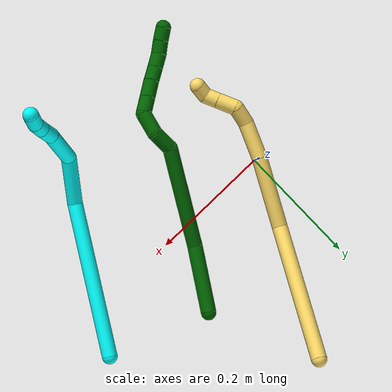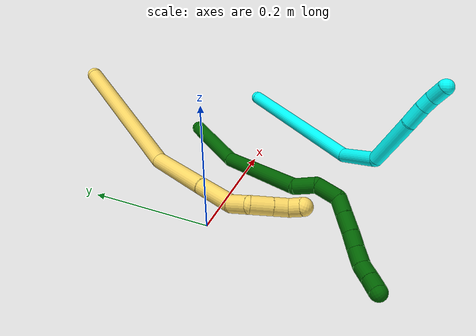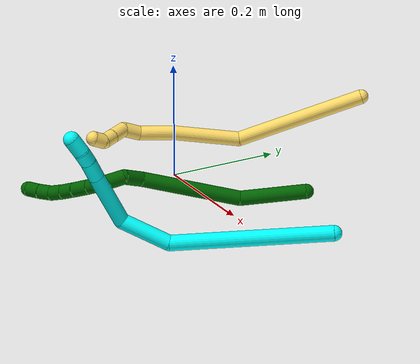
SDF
<sdf version="1.7">
 <world name="default">
  <model name="3">
   <static>0</static>
   <link name="3">
    <collision name="collision-cylinder-e_1_1_4">
     <pose>-0.059595 -0.046263 -0.102032 2.7159 -0.488881 -1.71365</pose>
     <geometry><cylinder><radius>0.0125</radius><length>0.253789</length></cylinder></geometry>
     <surface>
      <friction><ode><mu>1.16</mu><mu2>1.16</mu2><slip1>0</slip1><slip2>0</slip2></ode></friction>
      <contact><ode><kp>1e+06</kp><kd>1</kd><max_vel>0</max_vel><min_depth>0.001</min_depth></ode></contact>
     </surface>
    </collision>
    <visual name="visual-cylinder-e_1_1_4">
     <pose>-0.059595 -0.046263 -0.102032 2.7159 -0.488881 -1.71365</pose>
     <geometry><cylinder><radius>0.0125</radius><length>0.253789</length></cylinder></geometry>
     <material><ambient>0.003922 1 0.996078 1</ambient></material>
    </visual>
    <collision name="collision-cylinder-e_2_4_5">
     <pose>-0.122996 -0.120224 -0.233208 2.38162 -0.094412 -0.235467</pose>
     <geometry><cylinder><radius>0.0125</radius><length>0.080774</length></cylinder></geometry>
     <surface>
      <friction><ode><mu>1.16</mu><mu2>1.16</mu2><slip1>0</slip1><slip2>0</slip2></ode></friction>
      <contact><ode><kp>1e+06</kp><kd>1</kd><max_vel>0</max_vel><min_depth>0.001</min_depth></ode></contact>
     </surface>
    </collision>
    <visual name="visual-cylinder-e_2_4_5">
     <pose>-0.122996 -0.120224 -0.233208 2.38162 -0.094412 -0.235467</pose>
     <geometry><cylinder><radius>0.0125</radius><length>0.080774</length></cylinder></geometry>
     <material><ambient>0.003922 1 0.996078 1</ambient></material>
    </visual>
    <collision name="collision-cylinder-e_3_5_6">
     <pose>-0.099614 -0.173279 -0.285434 2.30929 0.670443 1.33504</pose>
     <geometry><cylinder><radius>0.0125</radius><length>0.08752</length></cylinder></geometry>
     <surface>
      <friction><ode><mu>1.16</mu><mu2>1.16</mu2><slip1>0</slip1><slip2>0</slip2></ode></friction>
      <contact><ode><kp>1e+06</kp><kd>1</kd><max_vel>0</max_vel><min_depth>0.001</min_depth></ode></contact>
     </surface>
    </collision>
    <visual name="visual-cylinder-e_3_5_6">
     <pose>-0.099614 -0.173279 -0.285434 2.30929 0.670443 1.33504</pose>
     <geometry><cylinder><radius>0.0125</radius><length>0.08752</length></cylinder></geometry>
     <material><ambient>0.003922 1 0.996078 1</ambient></material>
    </visual>
    <collision name="collision-cylinder-e_4_6_7">
     <pose>-0.061054 -0.205956 -0.317402 2.45244 0.779131 1.70486</pose>
     <geometry><cylinder><radius>0.0125</radius><length>0.032365</length></cylinder></geometry>
     <surface>
      <friction><ode><mu>1.16</mu><mu2>1.16</mu2><slip1>0</slip1><slip2>0</slip2></ode></friction>
      <contact><ode><kp>1e+06</kp><kd>1</kd><max_vel>0</max_vel><min_depth>0.001</min_depth></ode></contact>
     </surface>
    </collision>
    <visual name="visual-cylinder-e_4_6_7">
     <pose>-0.061054 -0.205956 -0.317402 2.45244 0.779131 1.70486</pose>
     <geometry><cylinder><radius>0.0125</radius><length>0.032365</length></cylinder></geometry>
     <material><ambient>0.003922 1 0.996078 1</ambient></material>
    </visual>
    <collision name="collision-cylinder-e_5_7_8">
     <pose>-0.043143 -0.217852 -0.332496 2.50649 0.703371 1.68071</pose>
     <geometry><cylinder><radius>0.0125</radius><length>0.020223</length></cylinder></geometry>
     <surface>
      <friction><ode><mu>1.16</mu><mu2>1.16</mu2><slip1>0</slip1><slip2>0</slip2></ode></friction>
      <contact><ode><kp>1e+06</kp><kd>1</kd><max_vel>0</max_vel><min_depth>0.001</min_depth></ode></contact>
     </surface>
    </collision>
    <visual name="visual-cylinder-e_5_7_8">
     <pose>-0.043143 -0.217852 -0.332496 2.50649 0.703371 1.68071</pose>
     <geometry><cylinder><radius>0.0125</radius><length>0.020223</length></cylinder></geometry>
     <material><ambient>0.003922 1 0.996078 1</ambient></material>
    </visual>
    <collision name="collision-cylinder-e_6_8_2">
     <pose>-0.030481 -0.230678 -0.346109 2.30222 0.504585 1.04778</pose>
     <geometry><cylinder><radius>0.0125</radius><length>0.02533</length></cylinder></geometry>
     <surface>
      <friction><ode><mu>1.16</mu><mu2>1.16</mu2><slip1>0</slip1><slip2>0</slip2></ode></friction>
      <contact><ode><kp>1e+06</kp><kd>1</kd><max_vel>0</max_vel><min_depth>0.001</min_depth></ode></contact>
     </surface>
    </collision>
    <visual name="visual-cylinder-e_6_8_2">
     <pose>-0.030481 -0.230678 -0.346109 2.30222 0.504585 1.04778</pose>
     <geometry><cylinder><radius>0.0125</radius><length>0.02533</length></cylinder></geometry>
     <material><ambient>0.003922 1 0.996078 1</ambient></material>
    </visual>
    <collision name="collision-sphere-2">
     <pose>-0.024358 -0.238929 -0.353514 0 -0 0</pose>
     <geometry><sphere><radius>0.0125</radius></sphere></geometry>
     <surface>
      <friction><ode><mu>1.16</mu><mu2>1.16</mu2><slip1>0</slip1><slip2>0</slip2></ode></friction>
      <contact><ode><kp>1e+06</kp><kd>1</kd><max_vel>0</max_vel><min_depth>0.001</min_depth></ode></contact>
     </surface>
    </collision>
    <visual name="visual-sphere-2">
     <pose>-0.024358 -0.238929 -0.353514 0 -0 0</pose>
     <geometry><sphere><radius>0.0125</radius></sphere></geometry>
     <material><ambient>0.003922 1 0.996078 1</ambient></material>
    </visual>
    <collision name="collision-sphere-4">
     <pose>-0.119189 -0.092525 -0.204063 0 -0 0</pose>
     <geometry><sphere><radius>0.0125</radius></sphere></geometry>
     <surface>
      <friction><ode><mu>1.16</mu><mu2>1.16</mu2><slip1>0</slip1><slip2>0</slip2></ode></friction>
      <contact><ode><kp>1e+06</kp><kd>1</kd><max_vel>0</max_vel><min_depth>0.001</min_depth></ode></contact>
     </surface>
    </collision>
    <visual name="visual-sphere-4">
     <pose>-0.119189 -0.092525 -0.204063 0 -0 0</pose>
     <geometry><sphere><radius>0.0125</radius></sphere></geometry>
     <material><ambient>0.003922 1 0.996078 1</ambient></material>
    </visual>
    <collision name="collision-sphere-1">
     <geometry><sphere><radius>0.0125</radius></sphere></geometry>
     <surface>
      <friction><ode><mu>1.16</mu><mu2>1.16</mu2><slip1>0</slip1><slip2>0</slip2></ode></friction>
      <contact><ode><kp>1e+06</kp><kd>1</kd><max_vel>0</max_vel><min_depth>0.001</min_depth></ode></contact>
     </surface>
    </collision>
    <visual name="visual-sphere-1">
     <geometry><sphere><radius>0.0125</radius></sphere></geometry>
     <material><ambient>0.003922 1 0.996078 1</ambient></material>
    </visual>
    <collision name="collision-sphere-8">
     <pose>-0.036604 -0.222427 -0.338704 0 -0 0</pose>
     <geometry><sphere><radius>0.0125</radius></sphere></geometry>
     <surface>
      <friction><ode><mu>1.16</mu><mu2>1.16</mu2><slip1>0</slip1><slip2>0</slip2></ode></friction>
      <contact><ode><kp>1e+06</kp><kd>1</kd><max_vel>0</max_vel><min_depth>0.001</min_depth></ode></contact>
     </surface>
    </collision>
    <visual name="visual-sphere-8">
     <pose>-0.036604 -0.222427 -0.338704 0 -0 0</pose>
     <geometry><sphere><radius>0.0125</radius></sphere></geometry>
     <material><ambient>0.003922 1 0.996078 1</ambient></material>
    </visual>
    <collision name="collision-sphere-5">
     <pose>-0.126804 -0.147923 -0.262352 0 -0 0</pose>
     <geometry><sphere><radius>0.0125</radius></sphere></geometry>
     <surface>
      <friction><ode><mu>1.16</mu><mu2>1.16</mu2><slip1>0</slip1><slip2>0</slip2></ode></friction>
      <contact><ode><kp>1e+06</kp><kd>1</kd><max_vel>0</max_vel><min_depth>0.001</min_depth></ode></contact>
     </surface>
    </collision>
    <visual name="visual-sphere-5">
     <pose>-0.126804 -0.147923 -0.262352 0 -0 0</pose>
     <geometry><sphere><radius>0.0125</radius></sphere></geometry>
     <material><ambient>0.003922 1 0.996078 1</ambient></material>
    </visual>
    <collision name="collision-sphere-6">
     <pose>-0.072425 -0.198634 -0.308515 0 -0 0</pose>
     <geometry><sphere><radius>0.0125</radius></sphere></geometry>
     <surface>
      <friction><ode><mu>1.16</mu><mu2>1.16</mu2><slip1>0</slip1><slip2>0</slip2></ode></friction>
      <contact><ode><kp>1e+06</kp><kd>1</kd><max_vel>0</max_vel><min_depth>0.001</min_depth></ode></contact>
     </surface>
    </collision>
    <visual name="visual-sphere-6">
     <pose>-0.072425 -0.198634 -0.308515 0 -0 0</pose>
     <geometry><sphere><radius>0.0125</radius></sphere></geometry>
     <material><ambient>0.003922 1 0.996078 1</ambient></material>
    </visual>
    <collision name="collision-sphere-7">
     <pose>-0.049683 -0.213277 -0.326288 0 -0 0</pose>
     <geometry><sphere><radius>0.0125</radius></sphere></geometry>
     <surface>
      <friction><ode><mu>1.16</mu><mu2>1.16</mu2><slip1>0</slip1><slip2>0</slip2></ode></friction>
      <contact><ode><kp>1e+06</kp><kd>1</kd><max_vel>0</max_vel><min_depth>0.001</min_depth></ode></contact>
     </surface>
    </collision>
    <visual name="visual-sphere-7">
     <pose>-0.049683 -0.213277 -0.326288 0 -0 0</pose>
     <geometry><sphere><radius>0.0125</radius></sphere></geometry>
     <material><ambient>0.003922 1 0.996078 1</ambient></material>
    </visual>
    <inertial>
     <pose>-0.074796 -0.107063 -0.190952 0 -0 0</pose>
     <mass>0.5</mass>
     <inertia>
      <ixx>-0.001276</ixx>
      <ixy>0</ixy>
      <ixz>0</ixz>
      <iyy>-0.000749</iyy>
      <iyz>0</iyz>
      <izz>0.00115</izz>
     </inertia>
    </inertial>
   </link>
   <pose>0.387648 0.066266 0.030201 -1.7676 -0.937166 0.232244</pose>
  </model>
  <model name="5">
   <static>0</static>
   <link name="5">
    <collision name="collision-cylinder-e_1_1_4">
     <pose>-0.004707 -0.105928 -0.034224 1.88329 -0.04226 -0.058057</pose>
     <geometry><cylinder><radius>0.0125</radius><length>0.222839</length></cylinder></geometry>
     <surface>
      <friction><ode><mu>1.16</mu><mu2>1.16</mu2><slip1>0</slip1><slip2>0</slip2></ode></friction>
      <contact><ode><kp>1e+06</kp><kd>1</kd><max_vel>0</max_vel><min_depth>0.001</min_depth></ode></contact>
     </surface>
    </collision>
    <visual name="visual-cylinder-e_1_1_4">
     <pose>-0.004707 -0.105928 -0.034224 1.88329 -0.04226 -0.058057</pose>
     <geometry><cylinder><radius>0.0125</radius><length>0.222839</length></cylinder></geometry>
     <material><ambient>1 0.858824 0.4 1</ambient></material>
    </visual>
    <collision name="collision-cylinder-e_2_4_5">
     <pose>-0.02415 -0.26706 -0.062602 1.4653 -0.259465 -0.23369</pose>
     <geometry><cylinder><radius>0.0125</radius><length>0.114869</length></cylinder></geometry>
     <surface>
      <friction><ode><mu>1.16</mu><mu2>1.16</mu2><slip1>0</slip1><slip2>0</slip2></ode></friction>
      <contact><ode><kp>1e+06</kp><kd>1</kd><max_vel>0</max_vel><min_depth>0.001</min_depth></ode></contact>
     </surface>
    </collision>
    <visual name="visual-cylinder-e_2_4_5">
     <pose>-0.02415 -0.26706 -0.062602 1.4653 -0.259465 -0.23369</pose>
     <geometry><cylinder><radius>0.0125</radius><length>0.114869</length></cylinder></geometry>
     <material><ambient>1 0.858824 0.4 1</ambient></material>
    </visual>
    <collision name="collision-cylinder-e_3_5_6">
     <pose>-0.043266 -0.351424 -0.054628 1.49792 -0.148707 -0.138281</pose>
     <geometry><cylinder><radius>0.0125</radius><length>0.059128</length></cylinder></geometry>
     <surface>
      <friction><ode><mu>1.16</mu><mu2>1.16</mu2><slip1>0</slip1><slip2>0</slip2></ode></friction>
      <contact><ode><kp>1e+06</kp><kd>1</kd><max_vel>0</max_vel><min_depth>0.001</min_depth></ode></contact>
     </surface>
    </collision>
    <visual name="visual-cylinder-e_3_5_6">
     <pose>-0.043266 -0.351424 -0.054628 1.49792 -0.148707 -0.138281</pose>
     <geometry><cylinder><radius>0.0125</radius><length>0.059128</length></cylinder></geometry>
     <material><ambient>1 0.858824 0.4 1</ambient></material>
    </visual>
    <collision name="collision-cylinder-e_4_6_7">
     <pose>-0.049301 -0.393981 -0.045893 1.11268 -0.110317 -0.068645</pose>
     <geometry><cylinder><radius>0.0125</radius><length>0.030057</length></cylinder></geometry>
     <surface>
      <friction><ode><mu>1.16</mu><mu2>1.16</mu2><slip1>0</slip1><slip2>0</slip2></ode></friction>
      <contact><ode><kp>1e+06</kp><kd>1</kd><max_vel>0</max_vel><min_depth>0.001</min_depth></ode></contact>
     </surface>
    </collision>
    <visual name="visual-cylinder-e_4_6_7">
     <pose>-0.049301 -0.393981 -0.045893 1.11268 -0.110317 -0.068645</pose>
     <geometry><cylinder><radius>0.0125</radius><length>0.030057</length></cylinder></geometry>
     <material><ambient>1 0.858824 0.4 1</ambient></material>
    </visual>
    <collision name="collision-cylinder-e_5_7_8">
     <pose>-0.041898 -0.418938 -0.035012 1.2166 0.633714 0.449001</pose>
     <geometry><cylinder><radius>0.0125</radius><length>0.030591</length></cylinder></geometry>
     <surface>
      <friction><ode><mu>1.16</mu><mu2>1.16</mu2><slip1>0</slip1><slip2>0</slip2></ode></friction>
      <contact><ode><kp>1e+06</kp><kd>1</kd><max_vel>0</max_vel><min_depth>0.001</min_depth></ode></contact>
     </surface>
    </collision>
    <visual name="visual-cylinder-e_5_7_8">
     <pose>-0.041898 -0.418938 -0.035012 1.2166 0.633714 0.449001</pose>
     <geometry><cylinder><radius>0.0125</radius><length>0.030591</length></cylinder></geometry>
     <material><ambient>1 0.858824 0.4 1</ambient></material>
    </visual>
    <collision name="collision-cylinder-e_6_8_9">
     <pose>-0.026299 -0.438853 -0.027648 1.21669 0.633473 0.448868</pose>
     <geometry><cylinder><radius>0.0125</radius><length>0.022103</length></cylinder></geometry>
     <surface>
      <friction><ode><mu>1.16</mu><mu2>1.16</mu2><slip1>0</slip1><slip2>0</slip2></ode></friction>
      <contact><ode><kp>1e+06</kp><kd>1</kd><max_vel>0</max_vel><min_depth>0.001</min_depth></ode></contact>
     </surface>
    </collision>
    <visual name="visual-cylinder-e_6_8_9">
     <pose>-0.026299 -0.438853 -0.027648 1.21669 0.633473 0.448868</pose>
     <geometry><cylinder><radius>0.0125</radius><length>0.022103</length></cylinder></geometry>
     <material><ambient>1 0.858824 0.4 1</ambient></material>
    </visual>
    <collision name="collision-cylinder-e_7_9_2">
     <pose>-0.020359 -0.455857 -0.019174 1.01388 -0.059018 -0.032782</pose>
     <geometry><cylinder><radius>0.0125</radius><length>0.020413</length></cylinder></geometry>
     <surface>
      <friction><ode><mu>1.16</mu><mu2>1.16</mu2><slip1>0</slip1><slip2>0</slip2></ode></friction>
      <contact><ode><kp>1e+06</kp><kd>1</kd><max_vel>0</max_vel><min_depth>0.001</min_depth></ode></contact>
     </surface>
    </collision>
    <visual name="visual-cylinder-e_7_9_2">
     <pose>-0.020359 -0.455857 -0.019174 1.01388 -0.059018 -0.032782</pose>
     <geometry><cylinder><radius>0.0125</radius><length>0.020413</length></cylinder></geometry>
     <material><ambient>1 0.858824 0.4 1</ambient></material>
    </visual>
    <collision name="collision-sphere-2">
     <pose>-0.020961 -0.464507 -0.013788 0 -0 0</pose>
     <geometry><sphere><radius>0.0125</radius></sphere></geometry>
     <surface>
      <friction><ode><mu>1.16</mu><mu2>1.16</mu2><slip1>0</slip1><slip2>0</slip2></ode></friction>
      <contact><ode><kp>1e+06</kp><kd>1</kd><max_vel>0</max_vel><min_depth>0.001</min_depth></ode></contact>
     </surface>
    </collision>
    <visual name="visual-sphere-2">
     <pose>-0.020961 -0.464507 -0.013788 0 -0 0</pose>
     <geometry><sphere><radius>0.0125</radius></sphere></geometry>
     <material><ambient>1 0.858824 0.4 1</ambient></material>
    </visual>
    <collision name="collision-sphere-9">
     <pose>-0.019757 -0.447208 -0.02456 0 -0 0</pose>
     <geometry><sphere><radius>0.0125</radius></sphere></geometry>
     <surface>
      <friction><ode><mu>1.16</mu><mu2>1.16</mu2><slip1>0</slip1><slip2>0</slip2></ode></friction>
      <contact><ode><kp>1e+06</kp><kd>1</kd><max_vel>0</max_vel><min_depth>0.001</min_depth></ode></contact>
     </surface>
    </collision>
    <visual name="visual-sphere-9">
     <pose>-0.019757 -0.447208 -0.02456 0 -0 0</pose>
     <geometry><sphere><radius>0.0125</radius></sphere></geometry>
     <material><ambient>1 0.858824 0.4 1</ambient></material>
    </visual>
    <collision name="collision-sphere-4">
     <pose>-0.009414 -0.211857 -0.068447 0 -0 0</pose>
     <geometry><sphere><radius>0.0125</radius></sphere></geometry>
     <surface>
      <friction><ode><mu>1.16</mu><mu2>1.16</mu2><slip1>0</slip1><slip2>0</slip2></ode></friction>
      <contact><ode><kp>1e+06</kp><kd>1</kd><max_vel>0</max_vel><min_depth>0.001</min_depth></ode></contact>
     </surface>
    </collision>
    <visual name="visual-sphere-4">
     <pose>-0.009414 -0.211857 -0.068447 0 -0 0</pose>
     <geometry><sphere><radius>0.0125</radius></sphere></geometry>
     <material><ambient>1 0.858824 0.4 1</ambient></material>
    </visual>
    <collision name="collision-sphere-1">
     <geometry><sphere><radius>0.0125</radius></sphere></geometry>
     <surface>
      <friction><ode><mu>1.16</mu><mu2>1.16</mu2><slip1>0</slip1><slip2>0</slip2></ode></friction>
      <contact><ode><kp>1e+06</kp><kd>1</kd><max_vel>0</max_vel><min_depth>0.001</min_depth></ode></contact>
     </surface>
    </collision>
    <visual name="visual-sphere-1">
     <geometry><sphere><radius>0.0125</radius></sphere></geometry>
     <material><ambient>1 0.858824 0.4 1</ambient></material>
    </visual>
    <collision name="collision-sphere-8">
     <pose>-0.032841 -0.430499 -0.030737 0 -0 0</pose>
     <geometry><sphere><radius>0.0125</radius></sphere></geometry>
     <surface>
      <friction><ode><mu>1.16</mu><mu2>1.16</mu2><slip1>0</slip1><slip2>0</slip2></ode></friction>
      <contact><ode><kp>1e+06</kp><kd>1</kd><max_vel>0</max_vel><min_depth>0.001</min_depth></ode></contact>
     </surface>
    </collision>
    <visual name="visual-sphere-8">
     <pose>-0.032841 -0.430499 -0.030737 0 -0 0</pose>
     <geometry><sphere><radius>0.0125</radius></sphere></geometry>
     <material><ambient>1 0.858824 0.4 1</ambient></material>
    </visual>
    <collision name="collision-sphere-5">
     <pose>-0.038886 -0.322264 -0.056756 0 -0 0</pose>
     <geometry><sphere><radius>0.0125</radius></sphere></geometry>
     <surface>
      <friction><ode><mu>1.16</mu><mu2>1.16</mu2><slip1>0</slip1><slip2>0</slip2></ode></friction>
      <contact><ode><kp>1e+06</kp><kd>1</kd><max_vel>0</max_vel><min_depth>0.001</min_depth></ode></contact>
     </surface>
    </collision>
    <visual name="visual-sphere-5">
     <pose>-0.038886 -0.322264 -0.056756 0 -0 0</pose>
     <geometry><sphere><radius>0.0125</radius></sphere></geometry>
     <material><ambient>1 0.858824 0.4 1</ambient></material>
    </visual>
    <collision name="collision-sphere-6">
     <pose>-0.047646 -0.380584 -0.052499 0 -0 0</pose>
     <geometry><sphere><radius>0.0125</radius></sphere></geometry>
     <surface>
      <friction><ode><mu>1.16</mu><mu2>1.16</mu2><slip1>0</slip1><slip2>0</slip2></ode></friction>
      <contact><ode><kp>1e+06</kp><kd>1</kd><max_vel>0</max_vel><min_depth>0.001</min_depth></ode></contact>
     </surface>
    </collision>
    <visual name="visual-sphere-6">
     <pose>-0.047646 -0.380584 -0.052499 0 -0 0</pose>
     <geometry><sphere><radius>0.0125</radius></sphere></geometry>
     <material><ambient>1 0.858824 0.4 1</ambient></material>
    </visual>
    <collision name="collision-sphere-7">
     <pose>-0.050955 -0.407377 -0.039287 0 -0 0</pose>
     <geometry><sphere><radius>0.0125</radius></sphere></geometry>
     <surface>
      <friction><ode><mu>1.16</mu><mu2>1.16</mu2><slip1>0</slip1><slip2>0</slip2></ode></friction>
      <contact><ode><kp>1e+06</kp><kd>1</kd><max_vel>0</max_vel><min_depth>0.001</min_depth></ode></contact>
     </surface>
    </collision>
    <visual name="visual-sphere-7">
     <pose>-0.050955 -0.407377 -0.039287 0 -0 0</pose>
     <geometry><sphere><radius>0.0125</radius></sphere></geometry>
     <material><ambient>1 0.858824 0.4 1</ambient></material>
    </visual>
    <inertial>
     <pose>-0.020283 -0.237448 -0.043001 0 -0 0</pose>
     <mass>0.5</mass>
     <inertia>
      <ixx>0.000993</ixx>
      <ixy>0</ixy>
      <ixz>0</ixz>
      <iyy>-0.000376</iyy>
      <iyz>0</iyz>
      <izz>0.00111</izz>
     </inertia>
    </inertial>
   </link>
   <pose>0.146075 0.287502 0.139219 0.110576 0.50003 -0.242106</pose>
  </model>
  <model name="6">
   <static>0</static>
   <link name="6">
    <collision name="collision-cylinder-e_1_1_4">
     <pose>-0.026487 -0.042937 0.022165 1.09425 -0.501423 -0.309517</pose>
     <geometry><cylinder><radius>0.0125</radius><length>0.110207</length></cylinder></geometry>
     <surface>
      <friction><ode><mu>1.16</mu><mu2>1.16</mu2><slip1>0</slip1><slip2>0</slip2></ode></friction>
      <contact><ode><kp>1e+06</kp><kd>1</kd><max_vel>0</max_vel><min_depth>0.001</min_depth></ode></contact>
     </surface>
    </collision>
    <visual name="visual-cylinder-e_1_1_4">
     <pose>-0.026487 -0.042937 0.022165 1.09425 -0.501423 -0.309517</pose>
     <geometry><cylinder><radius>0.0125</radius><length>0.110207</length></cylinder></geometry>
     <material><ambient>0 0.392157 0.003922 1</ambient></material>
    </visual>
    <collision name="collision-cylinder-e_2_4_5">
     <pose>-0.094363 -0.13221 0.099462 0.698936 -0.521612 -0.193909</pose>
     <geometry><cylinder><radius>0.0125</radius><length>0.166129</length></cylinder></geometry>
     <surface>
      <friction><ode><mu>1.16</mu><mu2>1.16</mu2><slip1>0</slip1><slip2>0</slip2></ode></friction>
      <contact><ode><kp>1e+06</kp><kd>1</kd><max_vel>0</max_vel><min_depth>0.001</min_depth></ode></contact>
     </surface>
    </collision>
    <visual name="visual-cylinder-e_2_4_5">
     <pose>-0.094363 -0.13221 0.099462 0.698936 -0.521612 -0.193909</pose>
     <geometry><cylinder><radius>0.0125</radius><length>0.166129</length></cylinder></geometry>
     <material><ambient>0 0.392157 0.003922 1</ambient></material>
    </visual>
    <collision name="collision-cylinder-e_3_5_6">
     <pose>-0.135868 -0.187058 0.169907 0.507261 -0.006635 -0.00172</pose>
     <geometry><cylinder><radius>0.0125</radius><length>0.035041</length></cylinder></geometry>
     <surface>
      <friction><ode><mu>1.16</mu><mu2>1.16</mu2><slip1>0</slip1><slip2>0</slip2></ode></friction>
      <contact><ode><kp>1e+06</kp><kd>1</kd><max_vel>0</max_vel><min_depth>0.001</min_depth></ode></contact>
     </surface>
    </collision>
    <visual name="visual-cylinder-e_3_5_6">
     <pose>-0.135868 -0.187058 0.169907 0.507261 -0.006635 -0.00172</pose>
     <geometry><cylinder><radius>0.0125</radius><length>0.035041</length></cylinder></geometry>
     <material><ambient>0 0.392157 0.003922 1</ambient></material>
    </visual>
    <collision name="collision-cylinder-e_4_6_7">
     <pose>-0.139144 -0.211783 0.193748 1.08666 -0.170811 -0.103323</pose>
     <geometry><cylinder><radius>0.0125</radius><length>0.03718</length></cylinder></geometry>
     <surface>
      <friction><ode><mu>1.16</mu><mu2>1.16</mu2><slip1>0</slip1><slip2>0</slip2></ode></friction>
      <contact><ode><kp>1e+06</kp><kd>1</kd><max_vel>0</max_vel><min_depth>0.001</min_depth></ode></contact>
     </surface>
    </collision>
    <visual name="visual-cylinder-e_4_6_7">
     <pose>-0.139144 -0.211783 0.193748 1.08666 -0.170811 -0.103323</pose>
     <geometry><cylinder><radius>0.0125</radius><length>0.03718</length></cylinder></geometry>
     <material><ambient>0 0.392157 0.003922 1</ambient></material>
    </visual>
    <collision name="collision-cylinder-e_5_7_8">
     <pose>-0.151729 -0.238105 0.201976 1.60027 -0.750201 -0.770515</pose>
     <geometry><cylinder><radius>0.0125</radius><length>0.027646</length></cylinder></geometry>
     <surface>
      <friction><ode><mu>1.16</mu><mu2>1.16</mu2><slip1>0</slip1><slip2>0</slip2></ode></friction>
      <contact><ode><kp>1e+06</kp><kd>1</kd><max_vel>0</max_vel><min_depth>0.001</min_depth></ode></contact>
     </surface>
    </collision>
    <visual name="visual-cylinder-e_5_7_8">
     <pose>-0.151729 -0.238105 0.201976 1.60027 -0.750201 -0.770515</pose>
     <geometry><cylinder><radius>0.0125</radius><length>0.027646</length></cylinder></geometry>
     <material><ambient>0 0.392157 0.003922 1</ambient></material>
    </visual>
    <collision name="collision-cylinder-e_6_8_9">
     <pose>-0.17146 -0.25898 0.201618 1.57638 -0.763516 -0.767382</pose>
     <geometry><cylinder><radius>0.0125</radius><length>0.029811</length></cylinder></geometry>
     <surface>
      <friction><ode><mu>1.16</mu><mu2>1.16</mu2><slip1>0</slip1><slip2>0</slip2></ode></friction>
      <contact><ode><kp>1e+06</kp><kd>1</kd><max_vel>0</max_vel><min_depth>0.001</min_depth></ode></contact>
     </surface>
    </collision>
    <visual name="visual-cylinder-e_6_8_9">
     <pose>-0.17146 -0.25898 0.201618 1.57638 -0.763516 -0.767382</pose>
     <geometry><cylinder><radius>0.0125</radius><length>0.029811</length></cylinder></geometry>
     <material><ambient>0 0.392157 0.003922 1</ambient></material>
    </visual>
    <collision name="collision-cylinder-e_7_9_10">
     <pose>-0.190589 -0.278281 0.201205 1.61215 -0.801636 -0.831784</pose>
     <geometry><cylinder><radius>0.0125</radius><length>0.024558</length></cylinder></geometry>
     <surface>
      <friction><ode><mu>1.16</mu><mu2>1.16</mu2><slip1>0</slip1><slip2>0</slip2></ode></friction>
      <contact><ode><kp>1e+06</kp><kd>1</kd><max_vel>0</max_vel><min_depth>0.001</min_depth></ode></contact>
     </surface>
    </collision>
    <visual name="visual-cylinder-e_7_9_10">
     <pose>-0.190589 -0.278281 0.201205 1.61215 -0.801636 -0.831784</pose>
     <geometry><cylinder><radius>0.0125</radius><length>0.024558</length></cylinder></geometry>
     <material><ambient>0 0.392157 0.003922 1</ambient></material>
    </visual>
    <collision name="collision-cylinder-e_8_10_11">
     <pose>-0.20858 -0.295142 0.201113 1.53953 -0.833191 -0.810292</pose>
     <geometry><cylinder><radius>0.0125</radius><length>0.02478</length></cylinder></geometry>
     <surface>
      <friction><ode><mu>1.16</mu><mu2>1.16</mu2><slip1>0</slip1><slip2>0</slip2></ode></friction>
      <contact><ode><kp>1e+06</kp><kd>1</kd><max_vel>0</max_vel><min_depth>0.001</min_depth></ode></contact>
     </surface>
    </collision>
    <visual name="visual-cylinder-e_8_10_11">
     <pose>-0.20858 -0.295142 0.201113 1.53953 -0.833191 -0.810292</pose>
     <geometry><cylinder><radius>0.0125</radius><length>0.02478</length></cylinder></geometry>
     <material><ambient>0 0.392157 0.003922 1</ambient></material>
    </visual>
    <collision name="collision-cylinder-e_9_11_12">
     <pose>-0.226301 -0.310012 0.204793 1.08913 -0.858698 -0.540985</pose>
     <geometry><cylinder><radius>0.0125</radius><length>0.022594</length></cylinder></geometry>
     <surface>
      <friction><ode><mu>1.16</mu><mu2>1.16</mu2><slip1>0</slip1><slip2>0</slip2></ode></friction>
      <contact><ode><kp>1e+06</kp><kd>1</kd><max_vel>0</max_vel><min_depth>0.001</min_depth></ode></contact>
     </surface>
    </collision>
    <visual name="visual-cylinder-e_9_11_12">
     <pose>-0.226301 -0.310012 0.204793 1.08913 -0.858698 -0.540985</pose>
     <geometry><cylinder><radius>0.0125</radius><length>0.022594</length></cylinder></geometry>
     <material><ambient>0 0.392157 0.003922 1</ambient></material>
    </visual>
    <collision name="collision-cylinder-e_10_12_2">
     <pose>-0.243709 -0.32224 0.211506 1.04577 -0.932425 -0.564607</pose>
     <geometry><cylinder><radius>0.0125</radius><length>0.022056</length></cylinder></geometry>
     <surface>
      <friction><ode><mu>1.16</mu><mu2>1.16</mu2><slip1>0</slip1><slip2>0</slip2></ode></friction>
      <contact><ode><kp>1e+06</kp><kd>1</kd><max_vel>0</max_vel><min_depth>0.001</min_depth></ode></contact>
     </surface>
    </collision>
    <visual name="visual-cylinder-e_10_12_2">
     <pose>-0.243709 -0.32224 0.211506 1.04577 -0.932425 -0.564607</pose>
     <geometry><cylinder><radius>0.0125</radius><length>0.022056</length></cylinder></geometry>
     <material><ambient>0 0.392157 0.003922 1</ambient></material>
    </visual>
    <collision name="collision-sphere-2">
     <pose>-0.252566 -0.327927 0.2148 0 -0 0</pose>
     <geometry><sphere><radius>0.0125</radius></sphere></geometry>
     <surface>
      <friction><ode><mu>1.16</mu><mu2>1.16</mu2><slip1>0</slip1><slip2>0</slip2></ode></friction>
      <contact><ode><kp>1e+06</kp><kd>1</kd><max_vel>0</max_vel><min_depth>0.001</min_depth></ode></contact>
     </surface>
    </collision>
    <visual name="visual-sphere-2">
     <pose>-0.252566 -0.327927 0.2148 0 -0 0</pose>
     <geometry><sphere><radius>0.0125</radius></sphere></geometry>
     <material><ambient>0 0.392157 0.003922 1</ambient></material>
    </visual>
    <collision name="collision-sphere-12">
     <pose>-0.234853 -0.316554 0.208212 0 -0 0</pose>
     <geometry><sphere><radius>0.0125</radius></sphere></geometry>
     <surface>
      <friction><ode><mu>1.16</mu><mu2>1.16</mu2><slip1>0</slip1><slip2>0</slip2></ode></friction>
      <contact><ode><kp>1e+06</kp><kd>1</kd><max_vel>0</max_vel><min_depth>0.001</min_depth></ode></contact>
     </surface>
    </collision>
    <visual name="visual-sphere-12">
     <pose>-0.234853 -0.316554 0.208212 0 -0 0</pose>
     <geometry><sphere><radius>0.0125</radius></sphere></geometry>
     <material><ambient>0 0.392157 0.003922 1</ambient></material>
    </visual>
    <collision name="collision-sphere-11">
     <pose>-0.21775 -0.303471 0.201373 0 -0 0</pose>
     <geometry><sphere><radius>0.0125</radius></sphere></geometry>
     <surface>
      <friction><ode><mu>1.16</mu><mu2>1.16</mu2><slip1>0</slip1><slip2>0</slip2></ode></friction>
      <contact><ode><kp>1e+06</kp><kd>1</kd><max_vel>0</max_vel><min_depth>0.001</min_depth></ode></contact>
     </surface>
    </collision>
    <visual name="visual-sphere-11">
     <pose>-0.21775 -0.303471 0.201373 0 -0 0</pose>
     <geometry><sphere><radius>0.0125</radius></sphere></geometry>
     <material><ambient>0 0.392157 0.003922 1</ambient></material>
    </visual>
    <collision name="collision-sphere-10">
     <pose>-0.199411 -0.286814 0.200852 0 -0 0</pose>
     <geometry><sphere><radius>0.0125</radius></sphere></geometry>
     <surface>
      <friction><ode><mu>1.16</mu><mu2>1.16</mu2><slip1>0</slip1><slip2>0</slip2></ode></friction>
      <contact><ode><kp>1e+06</kp><kd>1</kd><max_vel>0</max_vel><min_depth>0.001</min_depth></ode></contact>
     </surface>
    </collision>
    <visual name="visual-sphere-10">
     <pose>-0.199411 -0.286814 0.200852 0 -0 0</pose>
     <geometry><sphere><radius>0.0125</radius></sphere></geometry>
     <material><ambient>0 0.392157 0.003922 1</ambient></material>
    </visual>
    <collision name="collision-sphere-9">
     <pose>-0.181766 -0.269748 0.201558 0 -0 0</pose>
     <geometry><sphere><radius>0.0125</radius></sphere></geometry>
     <surface>
      <friction><ode><mu>1.16</mu><mu2>1.16</mu2><slip1>0</slip1><slip2>0</slip2></ode></friction>
      <contact><ode><kp>1e+06</kp><kd>1</kd><max_vel>0</max_vel><min_depth>0.001</min_depth></ode></contact>
     </surface>
    </collision>
    <visual name="visual-sphere-9">
     <pose>-0.181766 -0.269748 0.201558 0 -0 0</pose>
     <geometry><sphere><radius>0.0125</radius></sphere></geometry>
     <material><ambient>0 0.392157 0.003922 1</ambient></material>
    </visual>
    <collision name="collision-sphere-4">
     <pose>-0.052973 -0.085873 0.04433 0 -0 0</pose>
     <geometry><sphere><radius>0.0125</radius></sphere></geometry>
     <surface>
      <friction><ode><mu>1.16</mu><mu2>1.16</mu2><slip1>0</slip1><slip2>0</slip2></ode></friction>
      <contact><ode><kp>1e+06</kp><kd>1</kd><max_vel>0</max_vel><min_depth>0.001</min_depth></ode></contact>
     </surface>
    </collision>
    <visual name="visual-sphere-4">
     <pose>-0.052973 -0.085873 0.04433 0 -0 0</pose>
     <geometry><sphere><radius>0.0125</radius></sphere></geometry>
     <material><ambient>0 0.392157 0.003922 1</ambient></material>
    </visual>
    <collision name="collision-sphere-1">
     <geometry><sphere><radius>0.0125</radius></sphere></geometry>
     <surface>
      <friction><ode><mu>1.16</mu><mu2>1.16</mu2><slip1>0</slip1><slip2>0</slip2></ode></friction>
      <contact><ode><kp>1e+06</kp><kd>1</kd><max_vel>0</max_vel><min_depth>0.001</min_depth></ode></contact>
     </surface>
    </collision>
    <visual name="visual-sphere-1">
     <geometry><sphere><radius>0.0125</radius></sphere></geometry>
     <material><ambient>0 0.392157 0.003922 1</ambient></material>
    </visual>
    <collision name="collision-sphere-8">
     <pose>-0.161153 -0.248213 0.201678 0 -0 0</pose>
     <geometry><sphere><radius>0.0125</radius></sphere></geometry>
     <surface>
      <friction><ode><mu>1.16</mu><mu2>1.16</mu2><slip1>0</slip1><slip2>0</slip2></ode></friction>
      <contact><ode><kp>1e+06</kp><kd>1</kd><max_vel>0</max_vel><min_depth>0.001</min_depth></ode></contact>
     </surface>
    </collision>
    <visual name="visual-sphere-8">
     <pose>-0.161153 -0.248213 0.201678 0 -0 0</pose>
     <geometry><sphere><radius>0.0125</radius></sphere></geometry>
     <material><ambient>0 0.392157 0.003922 1</ambient></material>
    </visual>
    <collision name="collision-sphere-5">
     <pose>-0.135752 -0.178547 0.154594 0 -0 0</pose>
     <geometry><sphere><radius>0.0125</radius></sphere></geometry>
     <surface>
      <friction><ode><mu>1.16</mu><mu2>1.16</mu2><slip1>0</slip1><slip2>0</slip2></ode></friction>
      <contact><ode><kp>1e+06</kp><kd>1</kd><max_vel>0</max_vel><min_depth>0.001</min_depth></ode></contact>
     </surface>
    </collision>
    <visual name="visual-sphere-5">
     <pose>-0.135752 -0.178547 0.154594 0 -0 0</pose>
     <geometry><sphere><radius>0.0125</radius></sphere></geometry>
     <material><ambient>0 0.392157 0.003922 1</ambient></material>
    </visual>
    <collision name="collision-sphere-6">
     <pose>-0.135984 -0.195569 0.185221 0 -0 0</pose>
     <geometry><sphere><radius>0.0125</radius></sphere></geometry>
     <surface>
      <friction><ode><mu>1.16</mu><mu2>1.16</mu2><slip1>0</slip1><slip2>0</slip2></ode></friction>
      <contact><ode><kp>1e+06</kp><kd>1</kd><max_vel>0</max_vel><min_depth>0.001</min_depth></ode></contact>
     </surface>
    </collision>
    <visual name="visual-sphere-6">
     <pose>-0.135984 -0.195569 0.185221 0 -0 0</pose>
     <geometry><sphere><radius>0.0125</radius></sphere></geometry>
     <material><ambient>0 0.392157 0.003922 1</ambient></material>
    </visual>
    <collision name="collision-sphere-7">
     <pose>-0.142304 -0.227996 0.202274 0 -0 0</pose>
     <geometry><sphere><radius>0.0125</radius></sphere></geometry>
     <surface>
      <friction><ode><mu>1.16</mu><mu2>1.16</mu2><slip1>0</slip1><slip2>0</slip2></ode></friction>
      <contact><ode><kp>1e+06</kp><kd>1</kd><max_vel>0</max_vel><min_depth>0.001</min_depth></ode></contact>
     </surface>
    </collision>
    <visual name="visual-sphere-7">
     <pose>-0.142304 -0.227996 0.202274 0 -0 0</pose>
     <geometry><sphere><radius>0.0125</radius></sphere></geometry>
     <material><ambient>0 0.392157 0.003922 1</ambient></material>
    </visual>
    <inertial>
     <pose>-0.116346 -0.167373 0.125869 0 -0 0</pose>
     <mass>0.5</mass>
     <inertia>
      <ixx>0.000322</ixx>
      <ixy>0</ixy>
      <ixz>0</ixz>
      <iyy>0.000268</iyy>
      <iyz>0</iyz>
      <izz>0.000601</izz>
     </inertia>
    </inertial>
   </link>
   <pose>0.22415 0.125451 0.025978 0.731386 0.180105 -0.017266</pose>
  </model>
 </world>
</sdf>
